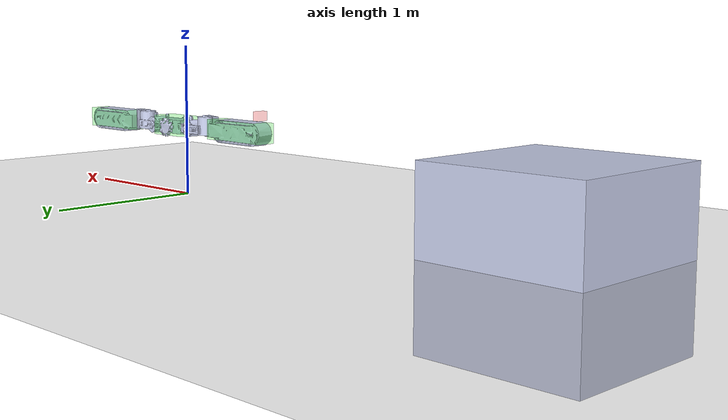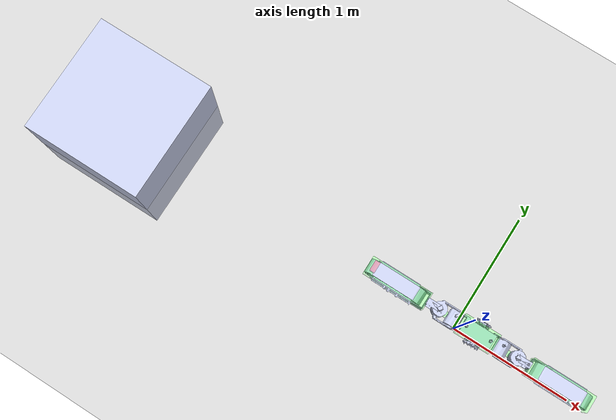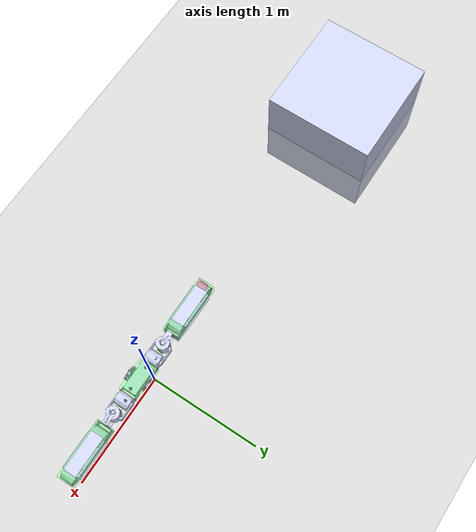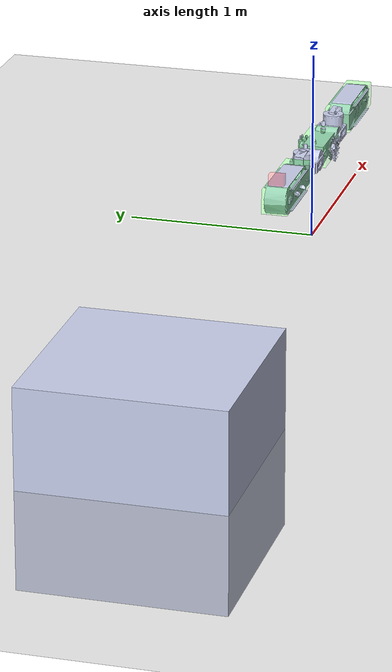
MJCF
<mujoco model="snake_scene">
  <compiler angle="radian"/>

  <!-- 1. 场景全局属性与画质设置 -->
  <option timestep="0.001" gravity="0 0 -9.81"/>

  <!-- 2. 场景美化资源：棋盘格地面与天空纹理 -->
  <asset>
    <texture name="skybox" type="skybox" builtin="gradient" rgb1="0.4 0.6 0.8" rgb2="0 0 0" width="800" height="800"/>
    <texture name="grid_tex" type="2d" builtin="checker" width="512" height="512" rgb1="0.7 0.7 0.7" rgb2="0.5 0.5 0.5"/>
    <material name="grid_mat" texture="grid_tex" texrepeat="10 10" reflectance="0.2"/>
  </asset>

  <!-- 3. 环境主体：平行光 + 无限大平地 -->
  <worldbody>
    <light directional="true" diffuse="0.8 0.8 0.8" specular="0.2 0.2 0.2" pos="0 0 5" dir="0 0 -1"/>
    <geom name="floor" type="plane" pos="0 0 0" size="5 5 0.1" material="grid_mat" friction="1.0 0.005 0.0001" condim="3" contype="1" conaffinity="1" group="0"/>

    <geom name="obstacle1" type="box" pos="-3 0 0" size="0.5 0.5 0.5" rgba="0.792157 0.819608 0.933333 1" friction="1.0 0.005 0.0001" condim="3" contype="1" conaffinity="1" group="0"/>
  </worldbody>

  <!-- 4. 关键：引入机器人 XML 模型 -->
  <include file="snake_robot_tracks_simple_collision.xml"/>

</mujoco>

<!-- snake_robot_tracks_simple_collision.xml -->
<mujoco model="snake_robot">
  <compiler angle="radian"/>
  <option timestep="0.001" gravity="0 0 -9.81" solver="Newton" iterations="50" integrator="implicitfast" cone="elliptic"/>
  <default>
    <default class="track_contact">
      <joint type="hinge" axis="0 1 0" limited="false" damping="0.05" armature="0.005"/>
      <!-- Track contact capsules: visible in geom group 3, but only collide through explicit floor pairs below. -->
      <geom type="capsule" quat="0.70710678 -0.70710678 0 0" rgba="1 0.5 0 0.35" friction="1 0.005 0.0001" condim="3" contype="0" conaffinity="0" mass="0.05" group="3"/>
    </default>
  </default>
  <asset>
    <mesh name="base_link" content_type="model/stl" file="../meshes/base_link.STL"/>
    <mesh name="front_link" content_type="model/stl" file="../meshes/front_link.STL"/>
    <mesh name="front_track" content_type="model/stl" file="../meshes/front_track.STL"/>
    <mesh name="back_link" content_type="model/stl" file="../meshes/back_link.STL"/>
    <mesh name="back_track" content_type="model/stl" file="../meshes/back_track.STL"/>
  </asset>
  <worldbody>
    <body name="base_link" pos="0 0 0.5" quat="1 0 0 0">
      <freejoint name="floating_base"/>
      <geom type="mesh" rgba="0.792157 0.819608 0.933333 1" mesh="base_link" contype="0" conaffinity="0" group="1"/>
      <geom name="base_link_collision" type="box" pos="0.120 0 -0.040" size="0.145 0.075 0.065" rgba="0 1 0 0.25" density="0" friction="0.15 0 0" condim="3" contype="1" conaffinity="1" group="2"/>

      <body name="front_link" pos="-0.0765 -0.0745 -0.0465" quat="0.707105 0.707108 0 0">
        <inertial pos="-0.10865 0.017803 -0.076529" quat="0.497061 0.497362 0.502973 0.502573" mass="0.63341" diaginertia="0.00101974 0.00090037 0.000736405"/>
        <joint name="front_joint1" pos="0 0 0" axis="0 0 1" range="-3.14 3.14" actuatorfrcrange="-100 100" damping="0.8" armature="0.02"/>
        <geom type="mesh" rgba="0.79216 0.81961 0.93333 1" mesh="front_link" contype="0" conaffinity="0" group="1"/>
        <geom name="front_link_collision" type="capsule" fromto="-0.025 -0.015 -0.074 -0.102 -0.015 -0.074" size="0.025" rgba="0 1 0 0.25" density="0" friction="0.15 0 0" condim="3" contype="1" conaffinity="1" group="2"/>

        <body name="front_track" pos="-0.12694 -0.047652 -0.0745" quat="0.707105 -0.707108 0 0">
          <inertial pos="-0.33739 -0.00064039 0.05406" quat="0.49988 0.500306 0.499664 0.500149" mass="3.1288" diaginertia="0.025033 0.022341 0.0080057"/>
          <joint name="front_joint2" pos="0 0 0" axis="0 0 -1" range="-3.14 3.14" actuatorfrcrange="-100 100" damping="0.8" armature="0.02"/>
          <geom type="mesh" rgba="0.79216 0.81961 0.93333 1" mesh="front_track" contype="0" conaffinity="0" group="1"/>
          <geom name="front_track_collision" type="box" pos="-0.350 0.0 0.060" size="0.250 0.068 0.065" rgba="0 1 0 0.25" density="0" friction="0.15 0 0" condim="3" contype="1" conaffinity="1" group="2"/>

          <body name="front_track_contact1" pos="-0.50 0.0 0.06">
            <joint name="front_track_drive_joint" class="track_contact"/>
            <geom name="front_track_contact1_geom" class="track_contact" size="0.075 0.010"/>
          </body>
          <body name="front_track_contact2" pos="-0.35 0.0 0.06">
            <joint name="front_track_roller2_joint" class="track_contact"/>
            <geom name="front_track_contact2_geom" class="track_contact" size="0.075 0.010"/>
          </body>
          <body name="front_track_contact3" pos="-0.20 0.0 0.06">
            <joint name="front_track_roller3_joint" class="track_contact"/>
            <geom name="front_track_contact3_geom" class="track_contact" size="0.075 0.010"/>
          </body>

          <body name="lidar" pos="-0.55 0.0 0.17">
            <!-- The site local +X axis points toward the robot front (front_track local -X). -->
            <site name="lidar_site" type="box" pos="0 0 0" quat="0 0 0 1" size="0.02 0.04 0.03" rgba="1 0 0 0.25"/>
          </body>
        </body>
      </body>

      <body name="back_link" pos="0.3165 -0.0745 -0.0465" quat="0.707105 0.707108 0 0">
        <inertial pos="0.10621 0.029044 -0.076537" quat="0.47619 0.476017 0.522731 0.522879" mass="0.63341" diaginertia="0.00101967 0.00090044 0.000736344"/>
        <joint name="back_joint1" pos="0 0 0" axis="0 0 1" range="-3.14 3.14" actuatorfrcrange="-100 100" damping="0.8" armature="0.02"/>
        <!-- back_link.STL contains an approximately +5.8 degree baked yaw relative to the mirrored front mesh; correct only the visual geom. -->
        <geom type="mesh" rgba="0.79216 0.81961 0.93333 1" mesh="back_link" quat="0.998713 0 0 -0.050714" contype="0" conaffinity="0" group="1"/>
        <geom name="back_link_collision" type="capsule" fromto="0.025 -0.015 -0.074 0.102 -0.015 -0.074" size="0.025" rgba="0 1 0 0.25" density="0" friction="0.15 0 0" condim="3" contype="1" conaffinity="1" group="2"/>

        <!-- Physics frame is an exact mirror of front_track. STL export skew is corrected only on the visual mesh below. -->
        <body name="back_track" pos="0.12694 -0.047652 -0.0745" quat="0.707105 -0.707108 0 0">
          <inertial pos="0.32501 -0.084885 0.054393" quat="0.559637 0.559644 0.432211 0.432202" mass="2.8466" diaginertia="0.0243598 0.02133 0.00757138"/>
          <joint name="back_joint2" pos="0 0 0" axis="0 0 -1" range="-3.14 3.14" actuatorfrcrange="-100 100" damping="0.8" armature="0.02"/>
          <!-- back_track.STL is rotated about +14.6 degrees in its exported local XY plane; undo that skew on the visual geom only. -->
          <geom type="mesh" rgba="0.79216 0.81961 0.93333 1" mesh="back_track" quat="0.991844 0 0 0.127459" contype="0" conaffinity="0" group="1"/>
          <geom name="back_track_collision" type="box" pos="0.350 0.0 0.060" size="0.250 0.068 0.065" rgba="0 1 0 0.25" density="0" friction="0.15 0 0" condim="3" contype="1" conaffinity="1" group="2"/>

          <body name="back_track_contact1" pos="0.50 0.0 0.06">
            <joint name="back_track_drive_joint" class="track_contact"/>
            <geom name="back_track_contact1_geom" class="track_contact" size="0.075 0.010"/>
          </body>
          <body name="back_track_contact2" pos="0.35 0.0 0.06">
            <joint name="back_track_roller2_joint" class="track_contact"/>
            <geom name="back_track_contact2_geom" class="track_contact" size="0.075 0.010"/>
          </body>
          <body name="back_track_contact3" pos="0.20 0.0 0.06">
            <joint name="back_track_roller3_joint" class="track_contact"/>
            <geom name="back_track_contact3_geom" class="track_contact" size="0.075 0.010"/>
          </body>
        </body>
      </body>
    </body>
  </worldbody>

  <contact>
    <exclude name="exclude_base_front_link" body1="base_link" body2="front_link"/>
    <exclude name="exclude_front_link_track" body1="front_link" body2="front_track"/>
    <exclude name="exclude_base_back_link" body1="base_link" body2="back_link"/>
    <exclude name="exclude_back_link_track" body1="back_link" body2="back_track"/>

    <pair name="base_ground_contact" geom1="floor" geom2="base_link_collision" condim="3" friction="0.05 0.05 0 0 0" solref="0.01 1" solimp="0.95 0.99 0.001 0.5 2"/>
    <pair name="front_link_ground_contact" geom1="floor" geom2="front_link_collision" condim="3" friction="0.05 0.05 0 0 0" solref="0.01 1" solimp="0.95 0.99 0.001 0.5 2"/>
    <pair name="front_track_shell_ground_contact" geom1="floor" geom2="front_track_collision" condim="3" friction="0.05 0.05 0 0 0" solref="0.01 1" solimp="0.95 0.99 0.001 0.5 2"/>
    <pair name="back_link_ground_contact" geom1="floor" geom2="back_link_collision" condim="3" friction="0.05 0.05 0 0 0" solref="0.01 1" solimp="0.95 0.99 0.001 0.5 2"/>
    <pair name="back_track_shell_ground_contact" geom1="floor" geom2="back_track_collision" condim="3" friction="0.05 0.05 0 0 0" solref="0.01 1" solimp="0.95 0.99 0.001 0.5 2"/>

    <pair name="front_track_ground_1" geom1="floor" geom2="front_track_contact1_geom" condim="3" friction="1.5 1.0 0 0 0" solref="0.01 1" solimp="0.95 0.99 0.001 0.5 2"/>
    <pair name="front_track_ground_2" geom1="floor" geom2="front_track_contact2_geom" condim="3" friction="1.5 1.0 0 0 0" solref="0.01 1" solimp="0.95 0.99 0.001 0.5 2"/>
    <pair name="front_track_ground_3" geom1="floor" geom2="front_track_contact3_geom" condim="3" friction="1.5 1.0 0 0 0" solref="0.01 1" solimp="0.95 0.99 0.001 0.5 2"/>
    <pair name="back_track_ground_1" geom1="floor" geom2="back_track_contact1_geom" condim="3" friction="1.5 1.0 0 0 0" solref="0.01 1" solimp="0.95 0.99 0.001 0.5 2"/>
    <pair name="back_track_ground_2" geom1="floor" geom2="back_track_contact2_geom" condim="3" friction="1.5 1.0 0 0 0" solref="0.01 1" solimp="0.95 0.99 0.001 0.5 2"/>
    <pair name="back_track_ground_3" geom1="floor" geom2="back_track_contact3_geom" condim="3" friction="1.5 1.0 0 0 0" solref="0.01 1" solimp="0.95 0.99 0.001 0.5 2"/>
  </contact>

  <equality>
    <joint name="front_track_sync_2" joint1="front_track_roller2_joint" joint2="front_track_drive_joint" polycoef="0 1 0 0 0" solref="0.01 1"/>
    <joint name="front_track_sync_3" joint1="front_track_roller3_joint" joint2="front_track_drive_joint" polycoef="0 1 0 0 0" solref="0.01 1"/>
    <joint name="back_track_sync_2" joint1="back_track_roller2_joint" joint2="back_track_drive_joint" polycoef="0 1 0 0 0" solref="0.01 1"/>
    <joint name="back_track_sync_3" joint1="back_track_roller3_joint" joint2="back_track_drive_joint" polycoef="0 1 0 0 0" solref="0.01 1"/>
  </equality>

  <actuator>
    <motor name="f1_motor" joint="front_joint1" ctrlrange="-36 36" ctrllimited="true"/>
    <motor name="f2_motor" joint="front_joint2" ctrlrange="-36 36" ctrllimited="true"/>
    <motor name="b1_motor" joint="back_joint1" ctrlrange="-36 36" ctrllimited="true"/>
    <motor name="b2_motor" joint="back_joint2" ctrlrange="-36 36" ctrllimited="true"/>
    <velocity name="front_track_motor" joint="front_track_drive_joint" kv="12" ctrllimited="true" ctrlrange="-15 15" forcelimited="true" forcerange="-36 36"/>
    <velocity name="back_track_motor" joint="back_track_drive_joint" kv="12" ctrllimited="true" ctrlrange="-15 15" forcelimited="true" forcerange="-36 36"/>
  </actuator>
</mujoco>
